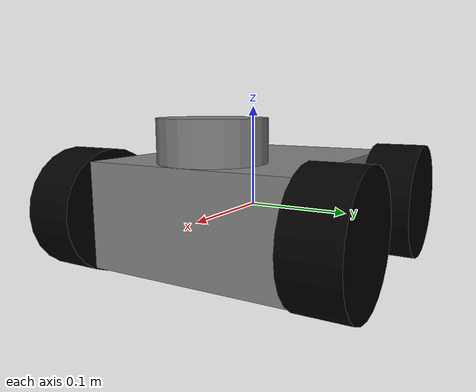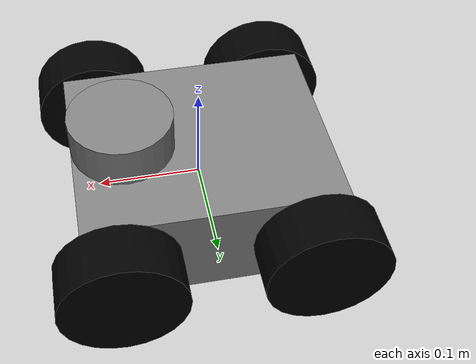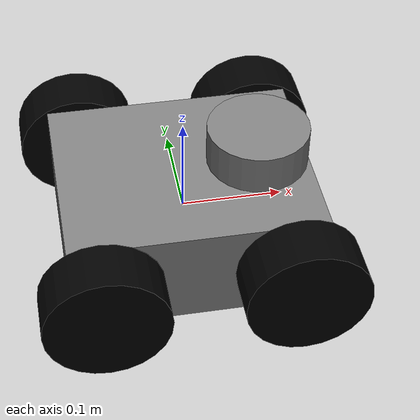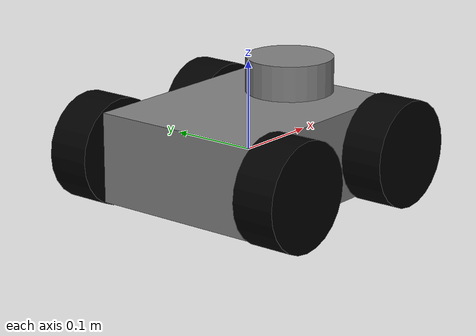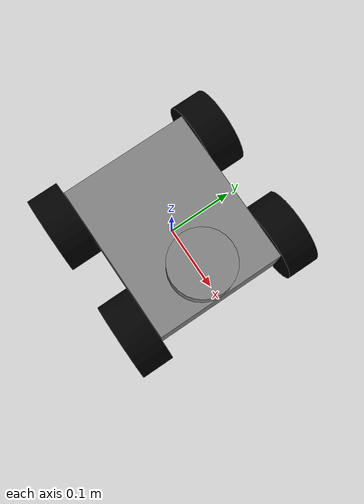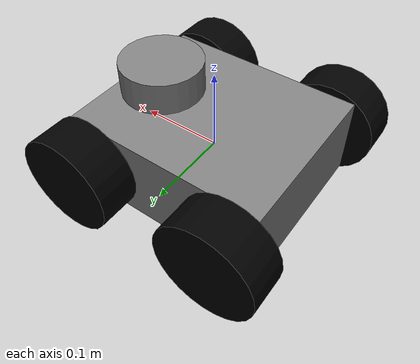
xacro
<?xml version="1.0"?>
<robot name="four-wheeled" xmlns:xacro="http://www.ros.org/wiki/xacro">
    <xacro:property name="scale" value="1.0" />
    <xacro:property name="caseWidth" value="${0.2032 * scale}" />
    <xacro:property name="caseLength" value="${0.24765 * scale}" />
    <xacro:property name="caseHeight" value="${0.1016 * scale}" />
    <xacro:property name="caseWeight" value="${4 * scale}"/>
    <xacro:property name="wheelDiam" value="${0.12065 * scale}" />
    <xacro:property name="wheelWidth" value="${0.05 * scale}"/>
    <xacro:property name="wheelCaseGap" value="${0.0008 * scale}"/>
    <xacro:property name="wheelToMiddleWidth" value="${(caseWidth + wheelWidth)/2 + wheelCaseGap}"/>
    <xacro:property name="wheelToMiddleLength" value="${caseLength/2 - 0.03 * scale}"/>
    <xacro:property name="wheelWeight" value="${0.15 * scale}" />
    <xacro:property name="headDiam" value="${0.1 * scale}" />
    <xacro:property name="headHeight" value="${0.04 * scale}" />
    <xacro:property name="headWeight" value="${0.2 * scale}" />

    <material name="gray">
        <color rgba="0.5 0.5 0.5 1"/>
    </material>
    <material name="black">
        <color rgba="0 0 0 1"/>
    </material>
    <material name="white">
        <color rgba="1 1 1 1"/>
    </material>
    <material name="green">
        <color rgba="0 1 0 1"/>
    </material>

    <xacro:macro name="default_inertial" params="mass">
        <inertial>
            <mass value="${mass}" />
            <inertia ixx="1.0" ixy="0.0" ixz="0.0"
                     iyy="1.0" iyz="0.0"
                     izz="1.0" />
        </inertial>
    </xacro:macro>

    <link name="base_link">
        <visual>
            <geometry>
                <box size="${caseLength} ${caseWidth} ${caseHeight}"/>
            </geometry>
            <material name="gray"/>
        </visual>

        <inertial>
            <xacro:property name="w" value="${caseWidth}" />
            <xacro:property name="h" value="${caseHeight}" />
            <xacro:property name="d" value="${caseLength}" />
            <xacro:property name="m" value="${caseWeight}" />
            <mass value="${m}" />
            <inertia ixx="${(1/12)*m*(h*h+d*d)}" ixy="0.0" ixz="0.0"
                     iyy="${(1/12)*m*(w*w+h*h)}" iyz="0.0"
                     izz="${(1/12)*m*(w*w+d*d)}" />
        </inertial>

        <collision>
            <geometry>
                <box size="${caseLength} ${caseWidth} ${caseHeight}"/>
            </geometry>
        </collision>
    </link>

    <!-- head -->
    <link name="head">
        <visual>
            <origin rpy="0 0 0" xyz="0 0 0"/>
            <geometry>
                <cylinder length="${headHeight}" radius="${headDiam/2}"/>
            </geometry>
            <material name="gray"/>
        </visual>
        <collision>
            <origin rpy="0 0 0" xyz="0 0 0"/>
            <geometry>
                <cylinder length="${headHeight}" radius="${headDiam/2}"/>
            </geometry>
        </collision>
        <inertial>
            <xacro:property name="r" value="${headDiam/2}" />
            <xacro:property name="h" value="${headHeight}" />

            <!-- TODO solve the problem of the head inertia-->
            <xacro:property name="mass" value="${headWeight * 0.01}" />

            <mass value="${mass}"/>
            <inertia ixx="${(1/12)*mass*(3*r*r+h*h)}" ixy="0.0" ixz="0.0"
                     iyy="${(1/12)*mass*(3*r*r+h*h)}" iyz="0.0"
                     izz="${0.5*mass*r*r}" />
        </inertial>

    </link>

    <joint name="head_swivel" type="continuous">
        <parent link="base_link"/>
        <child link="head"/>
        <axis xyz="0 0 1"/>
        <origin xyz="${caseLength/2 - headDiam/2} 0 ${caseHeight / 2 + headHeight / 2}"/>
        <limit effort="30" velocity="1.0"/>
        <dynamics damping="0.0" friction="0.0"/>
    </joint>
    <!-- gazebo - head -->
    <transmission name="head_swivel_trans">
        <type>transmission_interface/SimpleTransmission</type>
        <actuator name="$head_swivel_motor">
            <mechanicalReduction>1</mechanicalReduction>
        </actuator>
        <joint name="head_swivel">
            <hardwareInterface>hardware_interface/PositionJointInterface</hardwareInterface>
        </joint>
    </transmission>

    <gazebo reference="head">
        <mu1 value="200.0"/>
        <mu2 value="100.0"/>
        <kp value="1000000.0" />
        <kd value="1.0" />
        <material>Gazebo/Gray</material>
    </gazebo>
    <!-- /head -->

    <xacro:macro name="wheel" params="prefix suffix origX origY origZ mass">
        <link name="${prefix}_${suffix}_wheel">
            <visual>
                <origin rpy="${pi/2} 0 0" xyz="0 0 0"/>
                <geometry>
                    <cylinder length="${wheelWidth}" radius="${wheelDiam/2}"/>
                </geometry>
                <material name="black"/>
            </visual>
            <collision>
                <origin rpy="${pi/2} 0 0" xyz="0 0 0"/>
                <geometry>
                    <cylinder length="${wheelWidth}" radius="${wheelDiam/2}"/>
                </geometry>
            </collision>
            <inertial>
                <xacro:property name="r" value="${wheelDiam/2}" />
                <xacro:property name="h" value="${wheelWidth}" />
                <xacro:property name="m" value="${mass}" />

                <mass value="${m}" />
                <inertia ixx="${(1/12)*m*(3*r*r+h*h)}" ixy="0.0" ixz="0.0"
                         iyy="${0.5*m*r*r}" iyz="0.0"
                         izz="${(1/12)*m*(3*r*r+h*h)}" />
            </inertial>
        </link>
        <joint name="${prefix}_${suffix}_wheel_joint" type="continuous">
            <axis rpy="0 0 0" xyz="0 1 0"/>
            <parent link="base_link"/>
            <child link="${prefix}_${suffix}_wheel"/>
            <origin rpy="0 0 0" xyz="${origX} ${origY} ${origZ}"/>
        </joint>

        <transmission name="${prefix}_${suffix}_wheel_trans">
            <type>transmission_interface/SimpleTransmission</type>
            <actuator name="${prefix}_${suffix}_wheel_motor">
                <mechanicalReduction>1</mechanicalReduction>
            </actuator>
            <joint name="${prefix}_${suffix}_wheel_joint">
                <hardwareInterface>hardware_interface/VelocityJointInterface</hardwareInterface>
            </joint>
        </transmission>

        <gazebo reference="${prefix}_${suffix}_wheel">
            <mu value="4.0"/>
            <mu2 value="1.0"/>
            <kp value="1000000.0" />
            <kd value="1.0" />
            <material>Gazebo/Black</material>
        </gazebo>
    </xacro:macro>

    <xacro:wheel prefix="rear" suffix="left" origX="${-wheelToMiddleLength}" origY="${wheelToMiddleWidth}" origZ="0.0" mass="${wheelWeight}"/>
    <xacro:wheel prefix="rear" suffix="right" origX="${-wheelToMiddleLength}" origY="${-wheelToMiddleWidth}" origZ="0.0" mass="${wheelWeight}"/>
    <xacro:wheel prefix="front" suffix="left" origX="${wheelToMiddleLength}" origY="${wheelToMiddleWidth}" origZ="0.0" mass="${wheelWeight}"/>
    <xacro:wheel prefix="front" suffix="right" origX="${wheelToMiddleLength}" origY="${-wheelToMiddleWidth}" origZ="0.0" mass="${wheelWeight}"/>

    <gazebo>
        <plugin name="gazebo_ros_control" filename="libgazebo_ros_control.so">
            <robotNamespace>/</robotNamespace>
        </plugin>
    </gazebo>

</robot>
